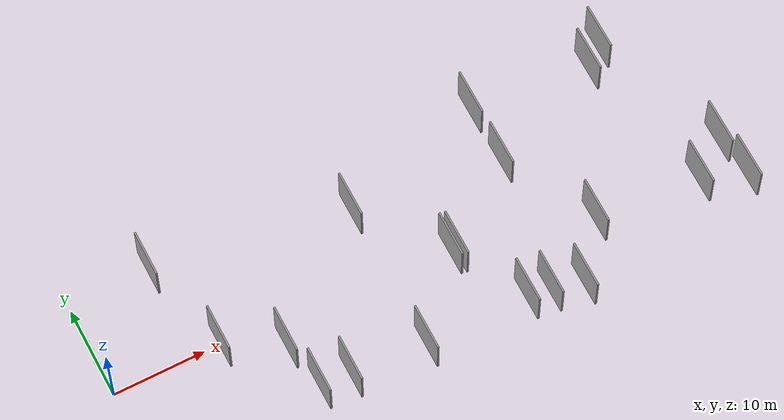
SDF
<sdf version="1.6">
 <world name="default">
  <scene>
   <sky><clouds><speed>12</speed></clouds></sky>
   <ambient>0.4 0.4 0.4 1</ambient>
   <background>0.7 0.7 0.7 1</background>
   <shadows>1</shadows>
  </scene>
  <gravity>0 0 -9.8066</gravity>
  <magnetic_field>6e-06 2.3e-05 -4.2e-05</magnetic_field>
  <physics default="0" name="default_physics" type="ode">
   <ode>
    <solver>
     <type>quick</type>
     <iters>10</iters>
     <sor>1.0</sor>
     <use_dynamic_moi_rescaling>0</use_dynamic_moi_rescaling>
    </solver>
    <constraints>
     <cfm>0</cfm>
     <erp>0.2</erp>
     <contact_max_correcting_vel>100</contact_max_correcting_vel>
     <contact_surface_layer>0.001</contact_surface_layer>
    </constraints>
   </ode>
   <max_step_size>0.004</max_step_size>
   <real_time_factor>1</real_time_factor>
   <real_time_update_rate>250</real_time_update_rate>
  </physics>
  <light name="sun" type="directional">
   <pose>0 0 10 0 0 0</pose>
   <diffuse>0.8 0.8 0.8 1</diffuse>
   <specular>0.2 0.2 0.2 1</specular>
   <attenuation>
    <range>1000</range>
    <constant>0.9</constant>
    <linear>0.01</linear>
    <quadratic>0.001</quadratic>
   </attenuation>
   <direction>-0.5 0.1 -0.9</direction>
  </light>
  <model name="grey_wall_1">
   <static>1</static>
   <pose>45.6797 4.8200 0.0 0.000000 0.000000 1.570796</pose>
   <link name="link">
    <pose>0 0 2.50 0 0 0</pose>
    <collision name="collision"><geometry><box><size>5.00 0.2 5.00</size></box></geometry></collision>
    <visual name="visual">
     <cast_shadows>0</cast_shadows>
     <geometry><box><size>5.00 0.2 5.00</size></box></geometry>
     <material>
      <script>
       <uri>model://grey_wall/materials/scripts</uri>
       <uri>model://grey_wall/materials/textures</uri>
       <name>vrc/grey_wall</name>
      </script>
     </material>
    </visual>
   </link>
  </model>
  <model name="grey_wall_2">
   <static>1</static>
   <pose>29.6379 6.7200 0.0 0.000000 0.000000 1.570796</pose>
   <link name="link">
    <pose>0 0 2.50 0 0 0</pose>
    <collision name="collision"><geometry><box><size>5.00 0.2 5.00</size></box></geometry></collision>
    <visual name="visual">
     <cast_shadows>0</cast_shadows>
     <geometry><box><size>5.00 0.2 5.00</size></box></geometry>
     <material>
      <script>
       <uri>model://grey_wall/materials/scripts</uri>
       <uri>model://grey_wall/materials/textures</uri>
       <name>vrc/grey_wall</name>
      </script>
     </material>
    </visual>
   </link>
  </model>
  <model name="grey_wall_3">
   <static>1</static>
   <pose>21.6949 -8.9575 0.0 0.000000 0.000000 1.570796</pose>
   <link name="link">
    <pose>0 0 2.50 0 0 0</pose>
    <collision name="collision"><geometry><box><size>5.00 0.2 5.00</size></box></geometry></collision>
    <visual name="visual">
     <cast_shadows>0</cast_shadows>
     <geometry><box><size>5.00 0.2 5.00</size></box></geometry>
     <material>
      <script>
       <uri>model://grey_wall/materials/scripts</uri>
       <uri>model://grey_wall/materials/textures</uri>
       <name>vrc/grey_wall</name>
      </script>
     </material>
    </visual>
   </link>
  </model>
  <model name="grey_wall_4">
   <static>1</static>
   <pose>60.6124 11.7490 0.0 0.000000 0.000000 1.570796</pose>
   <link name="link">
    <pose>0 0 2.50 0 0 0</pose>
    <collision name="collision"><geometry><box><size>5.00 0.2 5.00</size></box></geometry></collision>
    <visual name="visual">
     <cast_shadows>0</cast_shadows>
     <geometry><box><size>5.00 0.2 5.00</size></box></geometry>
     <material>
      <script>
       <uri>model://grey_wall/materials/scripts</uri>
       <uri>model://grey_wall/materials/textures</uri>
       <name>vrc/grey_wall</name>
      </script>
     </material>
    </visual>
   </link>
  </model>
  <model name="grey_wall_5">
   <static>1</static>
   <pose>46.8359 -10.7988 0.0 0.000000 0.000000 1.570796</pose>
   <link name="link">
    <pose>0 0 2.50 0 0 0</pose>
    <collision name="collision"><geometry><box><size>5.00 0.2 5.00</size></box></geometry></collision>
    <visual name="visual">
     <cast_shadows>0</cast_shadows>
     <geometry><box><size>5.00 0.2 5.00</size></box></geometry>
     <material>
      <script>
       <uri>model://grey_wall/materials/scripts</uri>
       <uri>model://grey_wall/materials/textures</uri>
       <name>vrc/grey_wall</name>
      </script>
     </material>
    </visual>
   </link>
  </model>
  <model name="grey_wall_6">
   <static>1</static>
   <pose>58.5026 10.0722 0.0 0.000000 0.000000 1.570796</pose>
   <link name="link">
    <pose>0 0 2.50 0 0 0</pose>
    <collision name="collision"><geometry><box><size>5.00 0.2 5.00</size></box></geometry></collision>
    <visual name="visual">
     <cast_shadows>0</cast_shadows>
     <geometry><box><size>5.00 0.2 5.00</size></box></geometry>
     <material>
      <script>
       <uri>model://grey_wall/materials/scripts</uri>
       <uri>model://grey_wall/materials/textures</uri>
       <name>vrc/grey_wall</name>
      </script>
     </material>
    </visual>
   </link>
  </model>
  <model name="grey_wall_7">
   <static>1</static>
   <pose>8.7439 10.2297 0.0 0.000000 0.000000 1.570796</pose>
   <link name="link">
    <pose>0 0 2.50 0 0 0</pose>
    <collision name="collision"><geometry><box><size>5.00 0.2 5.00</size></box></geometry></collision>
    <visual name="visual">
     <cast_shadows>0</cast_shadows>
     <geometry><box><size>5.00 0.2 5.00</size></box></geometry>
     <material>
      <script>
       <uri>model://grey_wall/materials/scripts</uri>
       <uri>model://grey_wall/materials/textures</uri>
       <name>vrc/grey_wall</name>
      </script>
     </material>
    </visual>
   </link>
  </model>
  <model name="grey_wall_8">
   <static>1</static>
   <pose>62.4866 -6.1760 0.0 0.000000 0.000000 1.570796</pose>
   <link name="link">
    <pose>0 0 2.50 0 0 0</pose>
    <collision name="collision"><geometry><box><size>5.00 0.2 5.00</size></box></geometry></collision>
    <visual name="visual">
     <cast_shadows>0</cast_shadows>
     <geometry><box><size>5.00 0.2 5.00</size></box></geometry>
     <material>
      <script>
       <uri>model://grey_wall/materials/scripts</uri>
       <uri>model://grey_wall/materials/textures</uri>
       <name>vrc/grey_wall</name>
      </script>
     </material>
    </visual>
   </link>
  </model>
  <model name="grey_wall_9">
   <static>1</static>
   <pose>29.7878 -9.4977 0.0 0.000000 0.000000 1.570796</pose>
   <link name="link">
    <pose>0 0 2.50 0 0 0</pose>
    <collision name="collision"><geometry><box><size>5.00 0.2 5.00</size></box></geometry></collision>
    <visual name="visual">
     <cast_shadows>0</cast_shadows>
     <geometry><box><size>5.00 0.2 5.00</size></box></geometry>
     <material>
      <script>
       <uri>model://grey_wall/materials/scripts</uri>
       <uri>model://grey_wall/materials/textures</uri>
       <name>vrc/grey_wall</name>
      </script>
     </material>
    </visual>
   </link>
  </model>
  <model name="grey_wall_10">
   <static>1</static>
   <pose>67.0738 -7.8029 0.0 0.000000 0.000000 1.570796</pose>
   <link name="link">
    <pose>0 0 2.50 0 0 0</pose>
    <collision name="collision"><geometry><box><size>5.00 0.2 5.00</size></box></geometry></collision>
    <visual name="visual">
     <cast_shadows>0</cast_shadows>
     <geometry><box><size>5.00 0.2 5.00</size></box></geometry>
     <material>
      <script>
       <uri>model://grey_wall/materials/scripts</uri>
       <uri>model://grey_wall/materials/textures</uri>
       <name>vrc/grey_wall</name>
      </script>
     </material>
    </visual>
   </link>
  </model>
  <model name="grey_wall_11">
   <static>1</static>
   <pose>37.1146 -1.8498 0.0 0.000000 0.000000 1.570796</pose>
   <link name="link">
    <pose>0 0 2.50 0 0 0</pose>
    <collision name="collision"><geometry><box><size>5.00 0.2 5.00</size></box></geometry></collision>
    <visual name="visual">
     <cast_shadows>0</cast_shadows>
     <geometry><box><size>5.00 0.2 5.00</size></box></geometry>
     <material>
      <script>
       <uri>model://grey_wall/materials/scripts</uri>
       <uri>model://grey_wall/materials/textures</uri>
       <name>vrc/grey_wall</name>
      </script>
     </material>
    </visual>
   </link>
  </model>
  <model name="grey_wall_12">
   <static>1</static>
   <pose>11.6493 -0.1156 0.0 0.000000 0.000000 1.570796</pose>
   <link name="link">
    <pose>0 0 2.50 0 0 0</pose>
    <collision name="collision"><geometry><box><size>5.00 0.2 5.00</size></box></geometry></collision>
    <visual name="visual">
     <cast_shadows>0</cast_shadows>
     <geometry><box><size>5.00 0.2 5.00</size></box></geometry>
     <material>
      <script>
       <uri>model://grey_wall/materials/scripts</uri>
       <uri>model://grey_wall/materials/textures</uri>
       <name>vrc/grey_wall</name>
      </script>
     </material>
    </visual>
   </link>
  </model>
  <model name="grey_wall_13">
   <static>1</static>
   <pose>36.5242 -1.7394 0.0 0.000000 0.000000 1.570796</pose>
   <link name="link">
    <pose>0 0 2.50 0 0 0</pose>
    <collision name="collision"><geometry><box><size>5.00 0.2 5.00</size></box></geometry></collision>
    <visual name="visual">
     <cast_shadows>0</cast_shadows>
     <geometry><box><size>5.00 0.2 5.00</size></box></geometry>
     <material>
      <script>
       <uri>model://grey_wall/materials/scripts</uri>
       <uri>model://grey_wall/materials/textures</uri>
       <name>vrc/grey_wall</name>
      </script>
     </material>
    </visual>
   </link>
  </model>
  <model name="grey_wall_14">
   <static>1</static>
   <pose>43.4509 -9.8974 0.0 0.000000 0.000000 1.570796</pose>
   <link name="link">
    <pose>0 0 2.50 0 0 0</pose>
    <collision name="collision"><geometry><box><size>5.00 0.2 5.00</size></box></geometry></collision>
    <visual name="visual">
     <cast_shadows>0</cast_shadows>
     <geometry><box><size>5.00 0.2 5.00</size></box></geometry>
     <material>
      <script>
       <uri>model://grey_wall/materials/scripts</uri>
       <uri>model://grey_wall/materials/textures</uri>
       <name>vrc/grey_wall</name>
      </script>
     </material>
    </visual>
   </link>
  </model>
  <model name="grey_wall_15">
   <static>1</static>
   <pose>17.4324 -3.3036 0.0 0.000000 0.000000 1.570796</pose>
   <link name="link">
    <pose>0 0 2.50 0 0 0</pose>
    <collision name="collision"><geometry><box><size>5.00 0.2 5.00</size></box></geometry></collision>
    <visual name="visual">
     <cast_shadows>0</cast_shadows>
     <geometry><box><size>5.00 0.2 5.00</size></box></geometry>
     <material>
      <script>
       <uri>model://grey_wall/materials/scripts</uri>
       <uri>model://grey_wall/materials/textures</uri>
       <name>vrc/grey_wall</name>
      </script>
     </material>
    </visual>
   </link>
  </model>
  <model name="grey_wall_16">
   <static>1</static>
   <pose>18.4220 -8.6342 0.0 0.000000 0.000000 1.570796</pose>
   <link name="link">
    <pose>0 0 2.50 0 0 0</pose>
    <collision name="collision"><geometry><box><size>5.00 0.2 5.00</size></box></geometry></collision>
    <visual name="visual">
     <cast_shadows>0</cast_shadows>
     <geometry><box><size>5.00 0.2 5.00</size></box></geometry>
     <material>
      <script>
       <uri>model://grey_wall/materials/scripts</uri>
       <uri>model://grey_wall/materials/textures</uri>
       <name>vrc/grey_wall</name>
      </script>
     </material>
    </visual>
   </link>
  </model>
  <model name="grey_wall_17">
   <static>1</static>
   <pose>51.0992 -5.1834 0.0 0.000000 0.000000 1.570796</pose>
   <link name="link">
    <pose>0 0 2.50 0 0 0</pose>
    <collision name="collision"><geometry><box><size>5.00 0.2 5.00</size></box></geometry></collision>
    <visual name="visual">
     <cast_shadows>0</cast_shadows>
     <geometry><box><size>5.00 0.2 5.00</size></box></geometry>
     <material>
      <script>
       <uri>model://grey_wall/materials/scripts</uri>
       <uri>model://grey_wall/materials/textures</uri>
       <name>vrc/grey_wall</name>
      </script>
     </material>
    </visual>
   </link>
  </model>
  <model name="grey_wall_18">
   <static>1</static>
   <pose>41.0133 -9.5649 0.0 0.000000 0.000000 1.570796</pose>
   <link name="link">
    <pose>0 0 2.50 0 0 0</pose>
    <collision name="collision"><geometry><box><size>5.00 0.2 5.00</size></box></geometry></collision>
    <visual name="visual">
     <cast_shadows>0</cast_shadows>
     <geometry><box><size>5.00 0.2 5.00</size></box></geometry>
     <material>
      <script>
       <uri>model://grey_wall/materials/scripts</uri>
       <uri>model://grey_wall/materials/textures</uri>
       <name>vrc/grey_wall</name>
      </script>
     </material>
    </visual>
   </link>
  </model>
  <model name="grey_wall_19">
   <static>1</static>
   <pose>66.3753 -3.2434 0.0 0.000000 0.000000 1.570796</pose>
   <link name="link">
    <pose>0 0 2.50 0 0 0</pose>
    <collision name="collision"><geometry><box><size>5.00 0.2 5.00</size></box></geometry></collision>
    <visual name="visual">
     <cast_shadows>0</cast_shadows>
     <geometry><box><size>5.00 0.2 5.00</size></box></geometry>
     <material>
      <script>
       <uri>model://grey_wall/materials/scripts</uri>
       <uri>model://grey_wall/materials/textures</uri>
       <name>vrc/grey_wall</name>
      </script>
     </material>
    </visual>
   </link>
  </model>
  <model name="grey_wall_20">
   <static>1</static>
   <pose>45.5497 11.1821 0.0 0.000000 0.000000 1.570796</pose>
   <link name="link">
    <pose>0 0 2.50 0 0 0</pose>
    <collision name="collision"><geometry><box><size>5.00 0.2 5.00</size></box></geometry></collision>
    <visual name="visual">
     <cast_shadows>0</cast_shadows>
     <geometry><box><size>5.00 0.2 5.00</size></box></geometry>
     <material>
      <script>
       <uri>model://grey_wall/materials/scripts</uri>
       <uri>model://grey_wall/materials/textures</uri>
       <name>vrc/grey_wall</name>
      </script>
     </material>
    </visual>
   </link>
  </model>
 </world>
</sdf>
